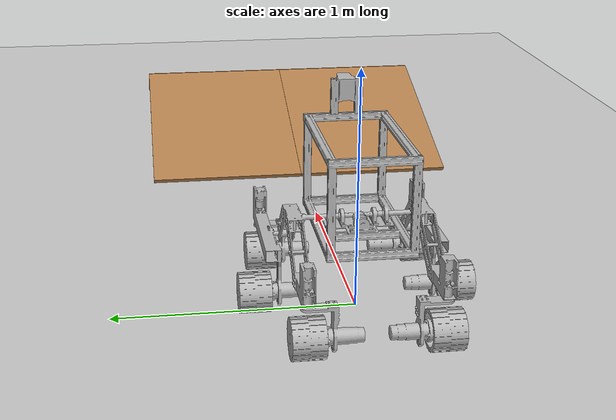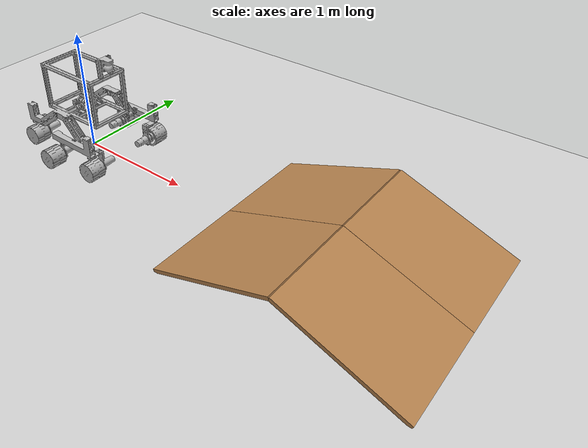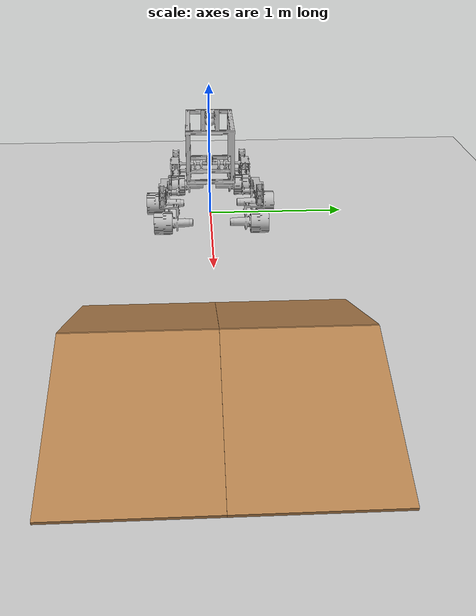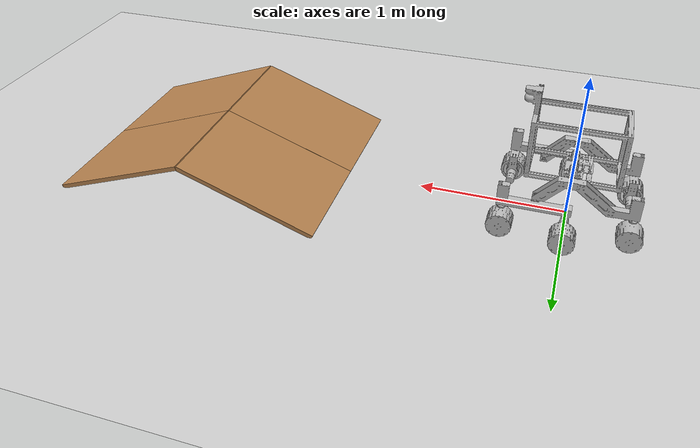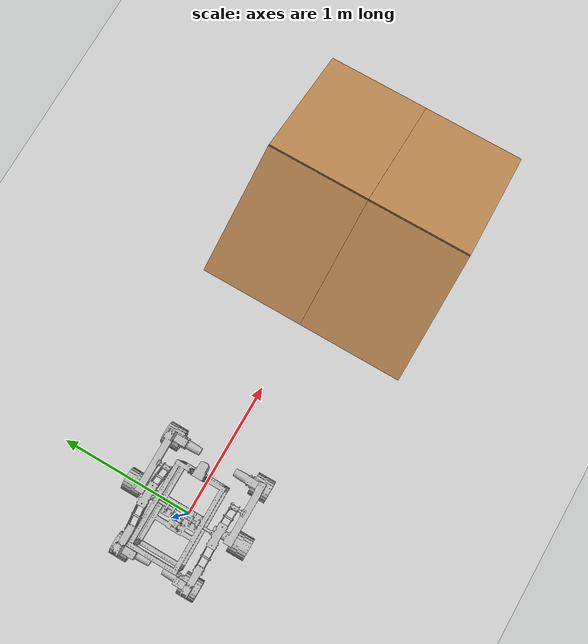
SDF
<sdf version="1.4">
 <world name="default">
  <light name="sun" type="directional">
   <pose>0 0 10 0 -0 0</pose>
   <diffuse>0.8 0.8 0.8 1</diffuse>
   <specular>0.2 0.2 0.2 1</specular>
   <attenuation>
    <range>1000</range>
    <constant>0.9</constant>
    <linear>0.01</linear>
    <quadratic>0.001</quadratic>
   </attenuation>
   <direction>-0.5 0.1 -0.9</direction>
  </light>
  <model name="ground_plane">
   <static>1</static>
   <link name="link">
    <collision name="collision">
     <geometry><plane><normal>0 0 1</normal><size>100 100</size></plane></geometry>
     <surface><friction><ode><mu>100</mu><mu2>50</mu2></ode></friction></surface>
    </collision>
    <visual name="visual">
     <cast_shadows>0</cast_shadows>
     <geometry><plane><normal>0 0 1</normal><size>100 100</size></plane></geometry>
     <material>
      <script><uri>file://media/materials/scripts/gazebo.material</uri><name>Gazebo/Grey</name></script>
     </material>
    </visual>
    <velocity_decay><linear>0</linear><angular>0</angular></velocity_decay>
   </link>
  </model>
  <physics type="ode">
   <max_step_size>0.001</max_step_size>
   <real_time_factor>1</real_time_factor>
   <real_time_update_rate>1000</real_time_update_rate>
   <gravity>0 0 -9.8</gravity>
  </physics>
  <scene><ambient>0.4 0.4 0.4 1</ambient><background>0.7 0.7 0.7 1</background><shadows>1</shadows></scene>
  <spherical_coordinates>
   <surface_model>EARTH_WGS84</surface_model>
   <latitude_deg>0</latitude_deg>
   <longitude_deg>0</longitude_deg>
   <elevation>0</elevation>
   <heading_deg>0</heading_deg>
  </spherical_coordinates>
  <model name="fr01">
   <link name="base_footprint">
    <inertial>
     <pose>0 0 0.37 0 -0 0</pose>
     <mass>6.441</mass>
     <inertia><ixx>0.004</ixx><ixy>0</ixy><ixz>0</ixz><iyy>0.002</iyy><iyz>0</iyz><izz>0.005</izz></inertia>
    </inertial>
    <collision name="base_footprint_collision_base_stabilized">
     <pose>0 0 0.37 0 0 -1.5708</pose>
     <geometry>
      <mesh>
       <scale>1 1 1</scale>
       <uri>/home/yuta/Documents/ROS/forest_ws/src/forest_robot_project/fr01_description/meshes/collision/base_link.stl</uri>
      </mesh>
     </geometry>
     <surface><friction><ode><mu>0.8</mu><mu2>0.8</mu2></ode></friction></surface>
    </collision>
    <velocity_decay><linear>0</linear><angular>0</angular></velocity_decay>
   </link>
   <link name="base_link">
    <pose>0 0 0.37 0 -0 0</pose>
    <inertial>
     <mass>6.441</mass>
     <inertia>
      <ixx>0.02</ixx>
      <ixy>0.006</ixy>
      <ixz>2.00005e-05</ixz>
      <iyy>0.006</iyy>
      <iyz>-1.20974e-09</iyz>
      <izz>0.023</izz>
     </inertia>
    </inertial>
    <collision name="base_link_collision">
     <pose>0 0 0 0 0 -1.5708</pose>
     <geometry>
      <mesh>
       <scale>1 1 1</scale>
       <uri>/home/yuta/Documents/ROS/forest_ws/src/forest_robot_project/fr01_description/meshes/collision/base_link.stl</uri>
      </mesh>
     </geometry>
     <surface><friction><ode><mu>0.8</mu><mu2>0.8</mu2></ode></friction></surface>
    </collision>
    <collision name="base_link_collision_hokuyo3d_link">
     <pose>0.3405 0 0.463 -3.14159 -0 0</pose>
     <geometry><box><size>0.106 0.085 0.105</size></box></geometry>
     <surface><friction><ode><mu>0.8</mu><mu2>0.8</mu2></ode></friction></surface>
    </collision>
    <visual name="base_link_visual">
     <pose>0 0 0 0 0 -1.5708</pose>
     <geometry>
      <mesh>
       <scale>1 1 1</scale>
       <uri>/home/yuta/Documents/ROS/forest_ws/src/forest_robot_project/fr01_description/meshes/visual/base_link.dae</uri>
      </mesh>
     </geometry>
    </visual>
    <visual name="base_link_visual_hokuyo3d_link">
     <pose>0.3405 0 0.463 -3.14159 -0 0</pose>
     <geometry>
      <mesh>
       <scale>1 1 1</scale>
       <uri>/home/yuta/Documents/ROS/forest_ws/src/forest_robot_project/fr01_description/meshes/visual/yvt-x002.dae</uri>
      </mesh>
     </geometry>
    </visual>
    <velocity_decay><linear>0</linear><angular>0</angular></velocity_decay>
    <self_collide>1</self_collide>
   </link>
   <joint name="base_link_joint" type="revolute">
    <child>base_link</child>
    <parent>base_footprint</parent>
    <axis><xyz>0 1 0</xyz><limit><lower>-1e+16</lower><upper>1e+16</upper></limit></axis>
   </joint>
   <link name="rocker_left_link">
    <pose>0 0.213 0.398 0 -0 0</pose>
    <inertial>
     <mass>2.088</mass>
     <inertia>
      <ixx>0.001</ixx>
      <ixy>1.419e-07</ixy>
      <ixz>-4.954e-05</ixz>
      <iyy>0.001</iyy>
      <iyz>-0.0004669</iyz>
      <izz>0.001</izz>
     </inertia>
    </inertial>
    <collision name="rocker_left_link_collision">
     <geometry>
      <mesh>
       <scale>1 1 1</scale>
       <uri>/home/yuta/Documents/ROS/forest_ws/src/forest_robot_project/fr01_description/meshes/collision/rocker_left_link.stl</uri>
      </mesh>
     </geometry>
    </collision>
    <visual name="rocker_left_link_visual">
     <geometry>
      <mesh>
       <scale>1 1 1</scale>
       <uri>/home/yuta/Documents/ROS/forest_ws/src/forest_robot_project/fr01_description/meshes/visual/rocker_left_link.dae</uri>
      </mesh>
     </geometry>
    </visual>
    <velocity_decay><linear>0</linear><angular>0</angular></velocity_decay>
   </link>
   <joint name="rocker_left_joint" type="revolute">
    <child>rocker_left_link</child>
    <parent>base_link</parent>
    <axis>
     <xyz>0 1 0</xyz>
     <limit><lower>-1.5708</lower><upper>1.5708</upper><effort>30</effort><velocity>6.28319</velocity></limit>
     <dynamics><damping>0</damping></dynamics>
    </axis>
   </joint>
   <link name="bogie_left_link">
    <pose>0.2 0.232945 0.248 0 -0 -3.14159</pose>
    <inertial>
     <mass>3.374</mass>
     <inertia>
      <ixx>0.002</ixx>
      <ixy>-6.528e-07</ixy>
      <ixz>-2.349e-06</ixz>
      <iyy>0.002</iyy>
      <iyz>1.156e-07</iyz>
      <izz>0.003</izz>
     </inertia>
    </inertial>
    <collision name="bogie_left_link_collision">
     <geometry>
      <mesh>
       <scale>1 1 1</scale>
       <uri>/home/yuta/Documents/ROS/forest_ws/src/forest_robot_project/fr01_description/meshes/collision/bogie_left_link.stl</uri>
      </mesh>
     </geometry>
     <surface><friction><ode><mu>0.8</mu><mu2>0.8</mu2></ode></friction></surface>
    </collision>
    <visual name="bogie_left_link_visual">
     <geometry>
      <mesh>
       <scale>1 1 1</scale>
       <uri>/home/yuta/Documents/ROS/forest_ws/src/forest_robot_project/fr01_description/meshes/visual/bogie_left_link.dae</uri>
      </mesh>
     </geometry>
    </visual>
    <velocity_decay><linear>0</linear><angular>0</angular></velocity_decay>
    <self_collide>1</self_collide>
   </link>
   <joint name="bogie_left_joint" type="revolute">
    <child>bogie_left_link</child>
    <parent>rocker_left_link</parent>
    <axis>
     <xyz>0 -1 0</xyz>
     <limit><lower>-1.5708</lower><upper>1.5708</upper><effort>30</effort><velocity>6.28319</velocity></limit>
     <dynamics><damping>0</damping></dynamics>
    </axis>
   </joint>
   <link name="steer_left_front_link">
    <pose>0.402 0.347945 0.298 0 -0 -1.5708</pose>
    <inertial>
     <mass>2.522</mass>
     <inertia>
      <ixx>0.0005737</ixx>
      <ixy>1.174e-10</ixy>
      <ixz>3.442e-07</ixz>
      <iyy>0.002</iyy>
      <iyz>-7.199e-10</iyz>
      <izz>0.002</izz>
     </inertia>
    </inertial>
    <collision name="steer_left_front_link_collision">
     <geometry>
      <mesh>
       <scale>1 1 1</scale>
       <uri>/home/yuta/Documents/ROS/forest_ws/src/forest_robot_project/fr01_description/meshes/collision/steer_link.stl</uri>
      </mesh>
     </geometry>
    </collision>
    <visual name="steer_left_front_link_visual">
     <geometry>
      <mesh>
       <scale>1 1 1</scale>
       <uri>/home/yuta/Documents/ROS/forest_ws/src/forest_robot_project/fr01_description/meshes/visual/steer_link.dae</uri>
      </mesh>
     </geometry>
    </visual>
    <velocity_decay><linear>0</linear><angular>0</angular></velocity_decay>
   </link>
   <joint name="steer_left_front_joint" type="revolute">
    <child>steer_left_front_link</child>
    <parent>bogie_left_link</parent>
    <axis>
     <xyz>0 0 1</xyz>
     <limit><lower>-1.5708</lower><upper>1.5708</upper><effort>30</effort><velocity>6.28319</velocity></limit>
     <dynamics><damping>0</damping></dynamics>
    </axis>
   </joint>
   <link name="wheel_left_front_link">
    <pose>0.402 0.412945 0.0835 -3.14159 -8.64102e-08 1.5708</pose>
    <inertial>
     <mass>2.966</mass>
     <inertia><ixx>0.006</ixx><ixy>0</ixy><ixz>0</ixz><iyy>0.004</iyy><iyz>0</iyz><izz>0.004</izz></inertia>
    </inertial>
    <collision name="wheel_left_front_link_collision">
     <pose>-0.065 0 0 -2.65359e-06 1.57079 -2.65359e-06</pose>
     <geometry><cylinder><length>0.16</length><radius>0.08</radius></cylinder></geometry>
     <surface><friction><ode><mu>0.8</mu><mu2>0.8</mu2></ode></friction></surface>
    </collision>
    <visual name="wheel_left_front_link_visual">
     <pose>0 0 0 3.14159 -8.64102e-08 3.14159</pose>
     <geometry>
      <mesh>
       <scale>1 1 1</scale>
       <uri>/home/yuta/Documents/ROS/forest_ws/src/forest_robot_project/fr01_description/meshes/visual/wheel_link.dae</uri>
      </mesh>
     </geometry>
    </visual>
    <velocity_decay><linear>0</linear><angular>0</angular></velocity_decay>
    <self_collide>1</self_collide>
   </link>
   <joint name="wheel_left_front_joint" type="revolute">
    <child>wheel_left_front_link</child>
    <parent>steer_left_front_link</parent>
    <axis><xyz>-0 1 0</xyz><limit><lower>-1e+16</lower><upper>1e+16</upper></limit></axis>
   </joint>
   <link name="wheel_left_middle_link">
    <pose>0.00199998 0.481445 0.083 -3.14159 -8.64102e-08 1.5708</pose>
    <inertial>
     <mass>2.966</mass>
     <inertia><ixx>0.006</ixx><ixy>0</ixy><ixz>0</ixz><iyy>0.004</iyy><iyz>0</iyz><izz>0.004</izz></inertia>
    </inertial>
    <collision name="wheel_left_middle_link_collision">
     <pose>-0.065 0 0 -2.65359e-06 1.57079 -2.65359e-06</pose>
     <geometry><cylinder><length>0.16</length><radius>0.08</radius></cylinder></geometry>
     <surface><friction><ode><mu>0.8</mu><mu2>0.8</mu2></ode></friction></surface>
    </collision>
    <visual name="wheel_left_middle_link_visual">
     <pose>0 0 0 3.14159 -8.64102e-08 3.14159</pose>
     <geometry>
      <mesh>
       <scale>1 1 1</scale>
       <uri>/home/yuta/Documents/ROS/forest_ws/src/forest_robot_project/fr01_description/meshes/visual/wheel_link.dae</uri>
      </mesh>
     </geometry>
    </visual>
    <velocity_decay><linear>0</linear><angular>0</angular></velocity_decay>
    <self_collide>1</self_collide>
   </link>
   <joint name="wheel_left_middle_joint" type="revolute">
    <child>wheel_left_middle_link</child>
    <parent>bogie_left_link</parent>
    <axis><xyz>-0 1 0</xyz><limit><lower>-1e+16</lower><upper>1e+16</upper></limit></axis>
   </joint>
   <link name="steer_left_back_link">
    <pose>-0.4 0.263 0.298 0 0 -1.5708</pose>
    <inertial>
     <mass>2.522</mass>
     <inertia>
      <ixx>0.0005737</ixx>
      <ixy>1.174e-10</ixy>
      <ixz>3.442e-07</ixz>
      <iyy>0.002</iyy>
      <iyz>-7.199e-10</iyz>
      <izz>0.002</izz>
     </inertia>
    </inertial>
    <collision name="steer_left_back_link_collision">
     <geometry>
      <mesh>
       <scale>1 1 1</scale>
       <uri>/home/yuta/Documents/ROS/forest_ws/src/forest_robot_project/fr01_description/meshes/collision/steer_link.stl</uri>
      </mesh>
     </geometry>
    </collision>
    <visual name="steer_left_back_link_visual">
     <geometry>
      <mesh>
       <scale>1 1 1</scale>
       <uri>/home/yuta/Documents/ROS/forest_ws/src/forest_robot_project/fr01_description/meshes/visual/steer_link.dae</uri>
      </mesh>
     </geometry>
    </visual>
    <velocity_decay><linear>0</linear><angular>0</angular></velocity_decay>
   </link>
   <joint name="steer_left_back_joint" type="revolute">
    <child>steer_left_back_link</child>
    <parent>rocker_left_link</parent>
    <axis>
     <xyz>0 0 1</xyz>
     <limit><lower>-1.5708</lower><upper>1.5708</upper><effort>30</effort><velocity>6.28319</velocity></limit>
     <dynamics><damping>0</damping></dynamics>
    </axis>
   </joint>
   <link name="wheel_left_back_link">
    <pose>-0.4 0.328 0.0835 3.14159 -8.64102e-08 1.5708</pose>
    <inertial>
     <mass>2.966</mass>
     <inertia><ixx>0.006</ixx><ixy>0</ixy><ixz>0</ixz><iyy>0.004</iyy><iyz>0</iyz><izz>0.004</izz></inertia>
    </inertial>
    <collision name="wheel_left_back_link_collision">
     <pose>-0.065 0 0 -2.65359e-06 1.57079 -2.65359e-06</pose>
     <geometry><cylinder><length>0.16</length><radius>0.08</radius></cylinder></geometry>
     <surface><friction><ode><mu>0.8</mu><mu2>0.8</mu2></ode></friction></surface>
    </collision>
    <visual name="wheel_left_back_link_visual">
     <pose>0 0 0 3.14159 -8.64102e-08 3.14159</pose>
     <geometry>
      <mesh>
       <scale>1 1 1</scale>
       <uri>/home/yuta/Documents/ROS/forest_ws/src/forest_robot_project/fr01_description/meshes/visual/wheel_link.dae</uri>
      </mesh>
     </geometry>
    </visual>
    <velocity_decay><linear>0</linear><angular>0</angular></velocity_decay>
    <self_collide>1</self_collide>
   </link>
   <joint name="wheel_left_back_joint" type="revolute">
    <child>wheel_left_back_link</child>
    <parent>steer_left_back_link</parent>
    <axis><xyz>0 1 0</xyz><limit><lower>-1e+16</lower><upper>1e+16</upper></limit></axis>
   </joint>
   <link name="rocker_right_link">
    <pose>0 -0.213 0.398 0 -0 0</pose>
    <inertial>
     <mass>2.088</mass>
     <inertia>
      <ixx>0.001</ixx>
      <ixy>-1.417e-07</ixy>
      <ixz>-4.954e-05</ixz>
      <iyy>0.001</iyy>
      <iyz>7.736e-08</iyz>
      <izz>0.001</izz>
     </inertia>
    </inertial>
    <collision name="rocker_right_link_collision">
     <geometry>
      <mesh>
       <scale>1 1 1</scale>
       <uri>/home/yuta/Documents/ROS/forest_ws/src/forest_robot_project/fr01_description/meshes/collision/rocker_right_link.stl</uri>
      </mesh>
     </geometry>
    </collision>
    <visual name="rocker_right_link_visual">
     <geometry>
      <mesh>
       <scale>1 1 1</scale>
       <uri>/home/yuta/Documents/ROS/forest_ws/src/forest_robot_project/fr01_description/meshes/visual/rocker_right_link.dae</uri>
      </mesh>
     </geometry>
    </visual>
    <velocity_decay><linear>0</linear><angular>0</angular></velocity_decay>
   </link>
   <joint name="rocker_right_joint" type="revolute">
    <child>rocker_right_link</child>
    <parent>base_link</parent>
    <axis>
     <xyz>0 1 0</xyz>
     <limit><lower>-1.5708</lower><upper>1.5708</upper><effort>30</effort><velocity>6.28319</velocity></limit>
     <dynamics><damping>0</damping></dynamics>
    </axis>
   </joint>
   <link name="bogie_right_link">
    <pose>0.2 -0.232945 0.248 0 -0 -3.14159</pose>
    <inertial>
     <mass>3.374</mass>
     <inertia>
      <ixx>0.002</ixx>
      <ixy>6.258e-07</ixy>
      <ixz>-2.349e-06</ixz>
      <iyy>0.002</iyy>
      <iyz>-1.149e-07</iyz>
      <izz>0.003</izz>
     </inertia>
    </inertial>
    <collision name="bogie_right_link_collision">
     <geometry>
      <mesh>
       <scale>1 1 1</scale>
       <uri>/home/yuta/Documents/ROS/forest_ws/src/forest_robot_project/fr01_description/meshes/collision/bogie_right_link.stl</uri>
      </mesh>
     </geometry>
     <surface><friction><ode><mu>0.8</mu><mu2>0.8</mu2></ode></friction></surface>
    </collision>
    <visual name="bogie_right_link_visual">
     <geometry>
      <mesh>
       <scale>1 1 1</scale>
       <uri>/home/yuta/Documents/ROS/forest_ws/src/forest_robot_project/fr01_description/meshes/visual/bogie_right_link.dae</uri>
      </mesh>
     </geometry>
    </visual>
    <velocity_decay><linear>0</linear><angular>0</angular></velocity_decay>
    <self_collide>1</self_collide>
   </link>
   <joint name="bogie_right_joint" type="revolute">
    <child>bogie_right_link</child>
    <parent>rocker_right_link</parent>
    <axis>
     <xyz>0 -1 0</xyz>
     <limit><lower>-1.5708</lower><upper>1.5708</upper><effort>30</effort><velocity>6.28319</velocity></limit>
     <dynamics><damping>0</damping></dynamics>
    </axis>
   </joint>
   <link name="steer_right_front_link">
    <pose>0.402 -0.347945 0.298 0 -0 1.5708</pose>
    <inertial>
     <mass>2.522</mass>
     <inertia>
      <ixx>0.0005737</ixx>
      <ixy>1.174e-10</ixy>
      <ixz>3.442e-07</ixz>
      <iyy>0.002</iyy>
      <iyz>-7.199e-10</iyz>
      <izz>0.002</izz>
     </inertia>
    </inertial>
    <collision name="steer_right_front_link_collision">
     <geometry>
      <mesh>
       <scale>1 1 1</scale>
       <uri>/home/yuta/Documents/ROS/forest_ws/src/forest_robot_project/fr01_description/meshes/collision/steer_link.stl</uri>
      </mesh>
     </geometry>
    </collision>
    <visual name="steer_right_front_link_visual">
     <geometry>
      <mesh>
       <scale>1 1 1</scale>
       <uri>/home/yuta/Documents/ROS/forest_ws/src/forest_robot_project/fr01_description/meshes/visual/steer_link.dae</uri>
      </mesh>
     </geometry>
    </visual>
    <velocity_decay><linear>0</linear><angular>0</angular></velocity_decay>
   </link>
   <joint name="steer_right_front_joint" type="revolute">
    <child>steer_right_front_link</child>
    <parent>bogie_right_link</parent>
    <axis>
     <xyz>0 0 1</xyz>
     <limit><lower>-1.5708</lower><upper>1.5708</upper><effort>30</effort><velocity>6.28319</velocity></limit>
     <dynamics><damping>0</damping></dynamics>
    </axis>
   </joint>
   <link name="wheel_right_front_link">
    <pose>0.402 -0.412945 0.0835 0 -0 1.5708</pose>
    <inertial>
     <mass>2.966</mass>
     <inertia><ixx>0.006</ixx><ixy>0</ixy><ixz>0</ixz><iyy>0.004</iyy><iyz>0</iyz><izz>0.004</izz></inertia>
    </inertial>
    <collision name="wheel_right_front_link_collision">
     <pose>0.065 0 0 -2.65359e-06 1.57079 -2.65359e-06</pose>
     <geometry><cylinder><length>0.16</length><radius>0.08</radius></cylinder></geometry>
     <surface><friction><ode><mu>0.8</mu><mu2>0.8</mu2></ode></friction></surface>
    </collision>
    <visual name="wheel_right_front_link_visual">
     <geometry>
      <mesh>
       <scale>1 1 1</scale>
       <uri>/home/yuta/Documents/ROS/forest_ws/src/forest_robot_project/fr01_description/meshes/visual/wheel_link.dae</uri>
      </mesh>
     </geometry>
    </visual>
    <velocity_decay><linear>0</linear><angular>0</angular></velocity_decay>
    <self_collide>1</self_collide>
   </link>
   <joint name="wheel_right_front_joint" type="revolute">
    <child>wheel_right_front_link</child>
    <parent>steer_right_front_link</parent>
    <axis><xyz>-0 1 0</xyz><limit><lower>-1e+16</lower><upper>1e+16</upper></limit></axis>
   </joint>
   <link name="wheel_right_middle_link">
    <pose>0.00200002 -0.481445 0.083 0 -0 1.5708</pose>
    <inertial>
     <mass>2.966</mass>
     <inertia><ixx>0.006</ixx><ixy>0</ixy><ixz>0</ixz><iyy>0.004</iyy><iyz>0</iyz><izz>0.004</izz></inertia>
    </inertial>
    <collision name="wheel_right_middle_link_collision">
     <pose>0.065 0 0 -2.65359e-06 1.57079 -2.65359e-06</pose>
     <geometry><cylinder><length>0.16</length><radius>0.08</radius></cylinder></geometry>
     <surface><friction><ode><mu>0.8</mu><mu2>0.8</mu2></ode></friction></surface>
    </collision>
    <visual name="wheel_right_middle_link_visual">
     <geometry>
      <mesh>
       <scale>1 1 1</scale>
       <uri>/home/yuta/Documents/ROS/forest_ws/src/forest_robot_project/fr01_description/meshes/visual/wheel_link.dae</uri>
      </mesh>
     </geometry>
    </visual>
    <velocity_decay><linear>0</linear><angular>0</angular></velocity_decay>
    <self_collide>1</self_collide>
   </link>
   <joint name="wheel_right_middle_joint" type="revolute">
    <child>wheel_right_middle_link</child>
    <parent>bogie_right_link</parent>
    <axis><xyz>-0 1 0</xyz><limit><lower>-1e+16</lower><upper>1e+16</upper></limit></axis>
   </joint>
   <link name="steer_right_back_link">
    <pose>-0.4 -0.263 0.298 0 -0 1.5708</pose>
    <inertial>
     <mass>2.522</mass>
     <inertia>
      <ixx>0.0005737</ixx>
      <ixy>1.174e-10</ixy>
      <ixz>3.442e-07</ixz>
      <iyy>0.002</iyy>
      <iyz>-7.199e-10</iyz>
      <izz>0.002</izz>
     </inertia>
    </inertial>
    <collision name="steer_right_back_link_collision">
     <geometry>
      <mesh>
       <scale>1 1 1</scale>
       <uri>/home/yuta/Documents/ROS/forest_ws/src/forest_robot_project/fr01_description/meshes/collision/steer_link.stl</uri>
      </mesh>
     </geometry>
    </collision>
    <visual name="steer_right_back_link_visual">
     <geometry>
      <mesh>
       <scale>1 1 1</scale>
       <uri>/home/yuta/Documents/ROS/forest_ws/src/forest_robot_project/fr01_description/meshes/visual/steer_link.dae</uri>
      </mesh>
     </geometry>
    </visual>
    <velocity_decay><linear>0</linear><angular>0</angular></velocity_decay>
   </link>
   <joint name="steer_right_back_joint" type="revolute">
    <child>steer_right_back_link</child>
    <parent>rocker_right_link</parent>
    <axis>
     <xyz>0 0 1</xyz>
     <limit><lower>-1.5708</lower><upper>1.5708</upper><effort>30</effort><velocity>6.28319</velocity></limit>
     <dynamics><damping>0</damping></dynamics>
    </axis>
   </joint>
   <link name="wheel_right_back_link">
    <pose>-0.4 -0.328 0.0835 0 -0 1.5708</pose>
    <inertial>
     <mass>2.966</mass>
     <inertia><ixx>0.006</ixx><ixy>0</ixy><ixz>0</ixz><iyy>0.004</iyy><iyz>0</iyz><izz>0.004</izz></inertia>
    </inertial>
    <collision name="wheel_right_back_link_collision">
     <pose>0.065 0 0 -2.65359e-06 1.57079 -2.65359e-06</pose>
     <geometry><cylinder><length>0.16</length><radius>0.08</radius></cylinder></geometry>
     <surface><friction><ode><mu>0.8</mu><mu2>0.8</mu2></ode></friction></surface>
    </collision>
    <visual name="wheel_right_back_link_visual">
     <geometry>
      <mesh>
       <scale>1 1 1</scale>
       <uri>/home/yuta/Documents/ROS/forest_ws/src/forest_robot_project/fr01_description/meshes/visual/wheel_link.dae</uri>
      </mesh>
     </geometry>
    </visual>
    <velocity_decay><linear>0</linear><angular>0</angular></velocity_decay>
    <self_collide>1</self_collide>
   </link>
   <joint name="wheel_right_back_joint" type="revolute">
    <child>wheel_right_back_link</child>
    <parent>steer_right_back_link</parent>
    <axis><xyz>-0 1 0</xyz><limit><lower>-1e+16</lower><upper>1e+16</upper></limit></axis>
   </joint>
   <static>0</static>
   <plugin name="gazebo_ros_control" filename="libgazebo_ros_control.so">
    <robotNamespace>/</robotNamespace>
   </plugin>
  </model>
  <model name="table">
   <static>1</static>
   <link name="link">
    <collision name="surface1">
     <pose>0 0 0.171 0 -0.349 0</pose>
     <geometry><box><size>1 0.8 0.03</size></box></geometry>
     <surface><friction><ode><mu>0.6</mu><mu2>0.6</mu2></ode></friction></surface>
    </collision>
    <visual name="visual1">
     <pose>0 0 0.171 0 -0.349 0</pose>
     <geometry><box><size>1 0.8 0.03</size></box></geometry>
     <material>
      <script><uri>file://media/materials/scripts/gazebo.material</uri><name>Gazebo/Wood</name></script>
     </material>
    </visual>
    <collision name="surface2">
     <pose>0.9397 0 0.171 0 0.349 0</pose>
     <geometry><box><size>1 0.8 0.03</size></box></geometry>
     <surface><friction><ode><mu>0.6</mu><mu2>0.6</mu2></ode></friction></surface>
    </collision>
    <visual name="visual2">
     <pose>0.9397 0 0.171 0 0.349 0</pose>
     <geometry><box><size>1 0.8 0.03</size></box></geometry>
     <material>
      <script><uri>file://media/materials/scripts/gazebo.material</uri><name>Gazebo/Wood</name></script>
     </material>
    </visual>
    <velocity_decay><linear>0</linear><angular>0</angular></velocity_decay>
   </link>
   <pose>2 0.394808 0 0 -0 0</pose>
  </model>
  <model name="table_0">
   <static>1</static>
   <link name="link">
    <collision name="surface1">
     <pose>0 0 0.171 0 -0.349 0</pose>
     <geometry><box><size>1 0.8 0.03</size></box></geometry>
     <surface><friction><ode><mu>0.6</mu><mu2>0.6</mu2></ode></friction></surface>
    </collision>
    <visual name="visual1">
     <pose>0 0 0.171 0 -0.349 0</pose>
     <geometry><box><size>1 0.8 0.03</size></box></geometry>
     <material>
      <script><uri>file://media/materials/scripts/gazebo.material</uri><name>Gazebo/Wood</name></script>
     </material>
    </visual>
    <collision name="surface2">
     <pose>0.9397 0 0.171 0 0.349 0</pose>
     <geometry><box><size>1 0.8 0.03</size></box></geometry>
     <surface><friction><ode><mu>0.6</mu><mu2>0.6</mu2></ode></friction></surface>
    </collision>
    <visual name="visual2">
     <pose>0.9397 0 0.171 0 0.349 0</pose>
     <geometry><box><size>1 0.8 0.03</size></box></geometry>
     <material>
      <script><uri>file://media/materials/scripts/gazebo.material</uri><name>Gazebo/Wood</name></script>
     </material>
    </visual>
    <velocity_decay><linear>0</linear><angular>0</angular></velocity_decay>
   </link>
   <pose>2 -0.405348 0 0 -0 0</pose>
  </model>
 </world>
</sdf>
